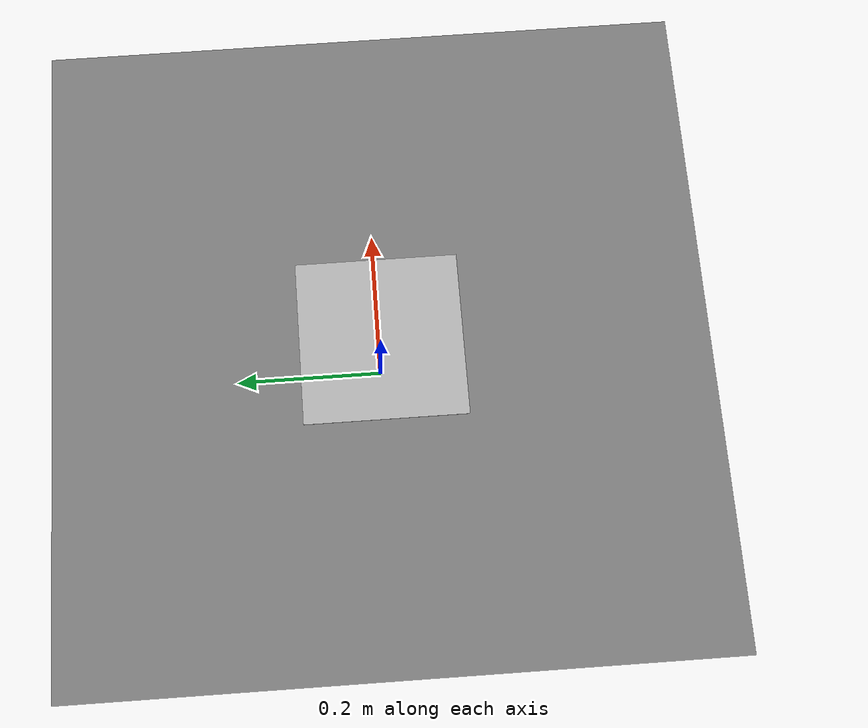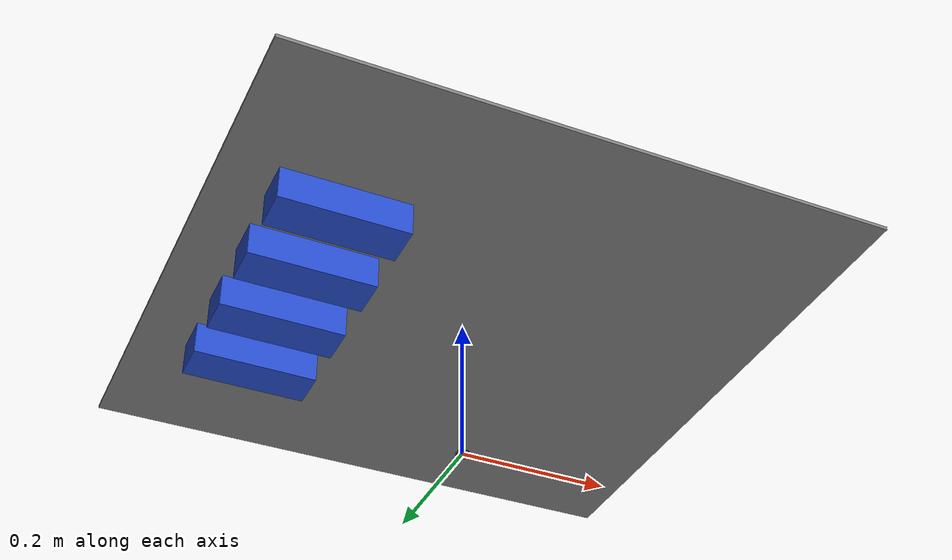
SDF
<?xml version="1.0"?>
<sdf version="1.5">
  <model name="droneport">
    <static>false</static>

    <link name="cover">
      <pose>0 0 0.2050 0 0 0 </pose>
      <inertial>
        <mass>15.6</mass>
        <pose>0 0 0</pose>
        <inertia>
          <ixx>3.328130000000001</ixx>
          <ixy>0.0</ixy>
          <ixz>0.0</ixz>
          <iyy>3.328130000000001</iyy>
          <iyz>0.0</iyz>
          <izz>6.6560000000000015</izz>
        </inertia>
      </inertial>
      <collision name="collision">
        <geometry>
          <box>

            <size>0.80 0.81 0.005</size>
          </box>
        </geometry>
        <surface>
          <contact>
            <ode>
              <max_vel>0</max_vel>
              <min_depth>0.001</min_depth>
            </ode>
          </contact>
          <friction>
            <ode>
              <mu>100</mu>
              <mu2>50</mu2>
            </ode>
          </friction>
        </surface>
      </collision>
      <visual name="visual">
        <geometry>
          <box>
            <size>0.80 0.80 0.005</size>
          </box>
        </geometry>
        <material>
          <ambient>0.5 0.5 0.5 1</ambient>
          <diffuse>0.5 0.5 0.5 1</diffuse>
          <specular>0 0 0 0</specular>
          <emissive>0 0 0 0</emissive>
        </material>
      </visual>
    </link>

    <link name="aruco_surface">
      <pose>0 0.0 0.2078 0 0 0 </pose>
      <inertial>
        <mass>0.08</mass>
        <pose>0 0 0</pose>
        <inertia>
          <ixx>0.0006000066666666667</ixx>
          <ixy>0.0</ixy>
          <ixz>0.0</ixz>
          <iyy>0.0006000066666666667</iyy>
          <iyz>0.0</iyz>
          <izz>0.0012000000000000001</izz>
        </inertia>
      </inertial>
      <collision name="collision">
        <geometry>
          <box>
            <size>0.2 0.2 0.0001</size>
          </box>
        </geometry>
        <surface>
          <friction>
            <ode>
              <mu>100</mu>
              <mu2>50</mu2>
            </ode>
          </friction>
        </surface>
      </collision>
      <visual name="visual">
        <cast_shadows>true</cast_shadows>
        <geometry>
          <box>
            <size>0.2 0.2 0.001</size>
          </box>
        </geometry>
        <material>
          <script>
            <uri>model://Aruco_test/materials/scripts/droneport.material</uri>
            <name>DronePort1LargeAruco</name>
          </script>
          <light type="directional" name="some_light">
            <diffuse>1.0 1.0 1.0 0</diffuse>
            <specular>1 1 1 0</specular>
            <direction>-1 -1 -1</direction>

          </light>
        </material>
      </visual>
    </link>

    <link name="battery0">
      <pose>-0.300 -0.350 0.025 0 0 0</pose>
      <collision name="collision">
        <geometry>
          <box>
            <size>0.15 0.05 0.04</size>
          </box>
        </geometry>
      </collision>
      <visual name="visual_battery0">
        <geometry>
          <box>
            <size>0.15 0.05 0.04</size>
          </box>
        </geometry>
        <material>
          <script>
            <uri>file://media/materials/scripts/gazebo.material</uri>
            <name>Gazebo/Blue</name>
          </script>
        </material>
      </visual>
    </link>

    <link name="battery1">
      <pose>-0.300 -0.250 0.025 0 0 0</pose>
      <collision name="collision">
        <geometry>
          <box>
            <size>0.15 0.05 0.04</size>
          </box>
        </geometry>
      </collision>
      <visual name="visual_battery1">
        <geometry>
          <box>
            <size>0.15 0.05 0.04</size>
          </box>
        </geometry>
        <material>
          <script>
            <uri>file://media/materials/scripts/gazebo.material</uri>
            <name>Gazebo/Blue</name>
          </script>
        </material>
      </visual>
    </link>

    <link name="battery2">
      <pose>-0.300 -0.150 0.025 0 0 0</pose>
      <collision name="collision">
        <geometry>
          <box>
            <size>0.15 0.05 0.04</size>
          </box>
        </geometry>
      </collision>
      <visual name="visual_battery2">
        <geometry>
          <box>
            <size>0.15 0.05 0.04</size>
          </box>
        </geometry>
        <material>
          <script>
            <uri>file://media/materials/scripts/gazebo.material</uri>
            <name>Gazebo/Blue</name>
          </script>
        </material>
      </visual>
    </link>

    <link name="battery3">
      <pose>-0.300 -0.050 0.025 0 0 0</pose>
      <collision name="collision">
        <geometry>
          <box>
            <size>0.15 0.05 0.04</size>
          </box>
        </geometry>
      </collision>
      <visual name="visual_battery3">
        <geometry>
          <box>
            <size>0.15 0.05 0.04</size>
          </box>
        </geometry>
        <material>
          <script>
            <uri>file://media/materials/scripts/gazebo.material</uri>
            <name>Gazebo/Blue</name>
          </script>
        </material>
      </visual>
    </link>

    <joint name="cover_to_aruco" type="fixed">
      <parent>cover</parent>
      <child>aruco_surface</child>
      <pose>0 0 0 0 0 0</pose>
      <axis>
        <xyz>0 0 1</xyz>
      </axis>
    </joint>

    <plugin name='droneport_plugin' filename='libgazebo_droneport_plugin.so'>
      <robotNamespace />
      <mavlink_addr>INADDR_ANY</mavlink_addr>
      <mavlink_tcp_port>4561</mavlink_tcp_port>
      <mavlink_udp_port>14750</mavlink_udp_port>
      <number_of_ports_for_batteries>4</number_of_ports_for_batteries>
      <TgtSystemID>201</TgtSystemID>
      <TgtComponentID>1</TgtComponentID>
      <use_tcp>0</use_tcp>
    </plugin>

    <model name='gps0'>
      <link name='link'>
        <pose>0 0 0 0 0 0</pose>
        <inertial>
          <pose>0 0 0 0 0 0</pose>
          <mass>0.01</mass>
          <inertia>
            <ixx>2.1733e-06</ixx>
            <ixy>0</ixy>
            <ixz>0</ixz>
            <iyy>2.1733e-06</iyy>
            <iyz>0</iyz>
            <izz>1.8e-07</izz>
          </inertia>
        </inertial>
        <visual name='visual'>
          <geometry>
            <cylinder>
              <radius>0.01</radius>
              <length>0.002</length>
            </cylinder>
          </geometry>
          <material>
            <script>
              <name>Gazebo/Black</name>
              <uri>__default__</uri>
            </script>
          </material>
        </visual>
        <sensor name='gps' type='gps'>
          <pose>0 0 0 0 0 0</pose>
          <plugin name='gps_plugin' filename='libgazebo_gps_plugin.so'>
            <robotNamespace />
            <gpsNoise>1</gpsNoise>
            <gpsXYRandomWalk>2.0</gpsXYRandomWalk>
            <gpsZRandomWalk>4.0</gpsZRandomWalk>
            <gpsXYNoiseDensity>0.0002</gpsXYNoiseDensity>
            <gpsZNoiseDensity>0.0004</gpsZNoiseDensity>
            <gpsVXYNoiseDensity>0.2</gpsVXYNoiseDensity>
            <gpsVZNoiseDensity>0.4</gpsVZNoiseDensity>
          </plugin>
        </sensor>
      </link>
    </model>

  </model>
</sdf>
